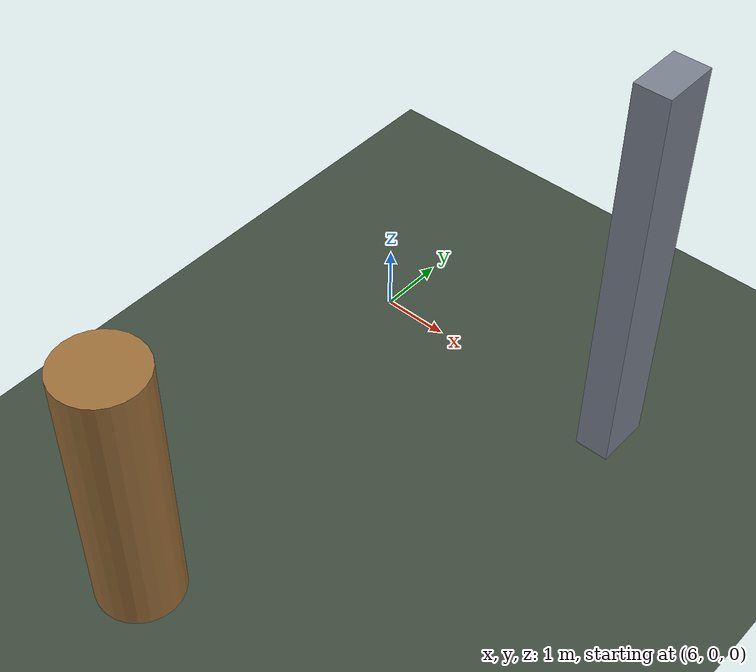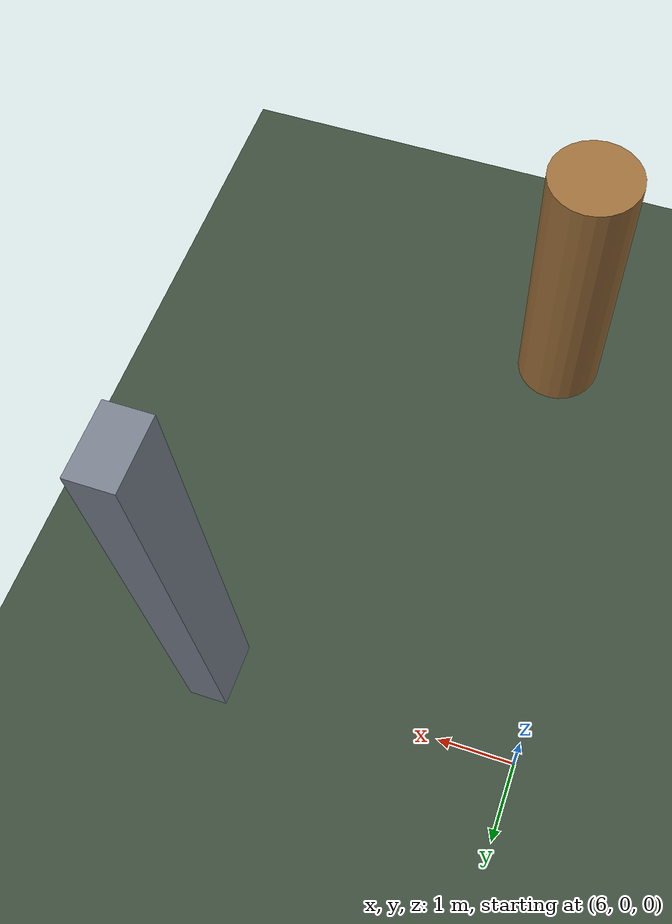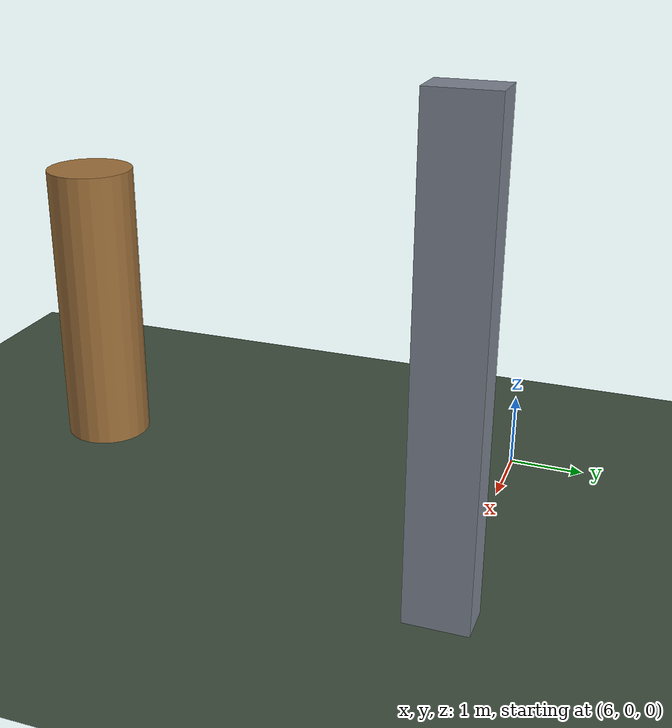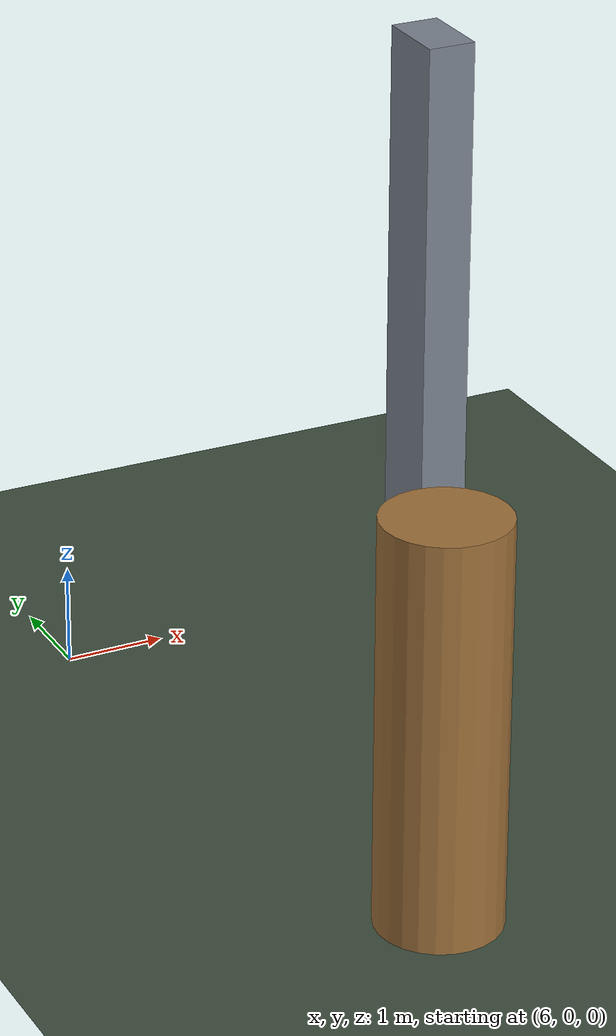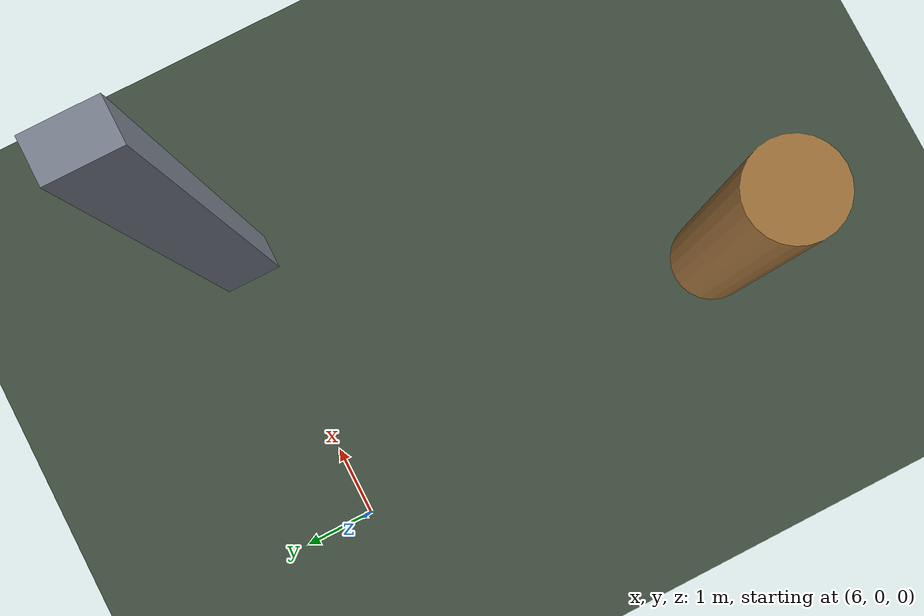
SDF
<?xml version="1.0"?>
<sdf version="1.6">
  <world name="E2_occlusion_arena">
    <gravity>0 0 -9.80665</gravity>
    <physics name="ode_1khz" type="ode">
      <max_step_size>0.001</max_step_size>
      <real_time_factor>1.0</real_time_factor>
      <real_time_update_rate>1000</real_time_update_rate>
    </physics>

    <scene>
      <ambient>0.35 0.35 0.35 1</ambient>
      <background>0.65 0.78 0.92 1</background>
      <shadows>false</shadows>
    </scene>

    <light name="sun" type="directional">
      <cast_shadows>false</cast_shadows>
      <pose>0 0 10 0 0 0</pose>
      <diffuse>0.9 0.9 0.9 1</diffuse>
      <specular>0.1 0.1 0.1 1</specular>
      <direction>-0.4 0.2 -0.9</direction>
    </light>

    <include>
      <uri>model://mid360_open_ground</uri>
      <name>open_ground</name>
    </include>

    <include>
      <uri>model://background_wall</uri>
      <name>background_wall</name>
      <pose>10 0 0 0 0 0</pose>
    </include>

    <include>
      <uri>model://pillar</uri>
      <name>pillar</name>
      <pose>7 -6 0 0 0 0</pose>
    </include>

    <!-- Dynamic entities are spawned by the S02, S04, and S06 gates. -->
  </world>
</sdf>

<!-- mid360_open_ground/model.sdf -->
<sdf version="1.6">
  <model name="mid360_open_ground">
    <static>true</static>
    <link name="ground_link">
      <collision name="ground_collision">
        <geometry>
          <plane>
            <normal>0 0 1</normal>
            <size>100 100</size>
          </plane>
        </geometry>
        <surface>
          <friction>
            <ode>
              <mu>1.0</mu>
              <mu2>1.0</mu2>
            </ode>
          </friction>
          <contact>
            <collide_without_contact>true</collide_without_contact>
          </contact>
        </surface>
      </collision>
      <visual name="ground_visual">
        <geometry>
          <plane>
            <normal>0 0 1</normal>
            <size>100 100</size>
          </plane>
        </geometry>
        <material>
          <ambient>0.18 0.22 0.18 1</ambient>
          <diffuse>0.24 0.30 0.24 1</diffuse>
          <specular>0.01 0.01 0.01 1</specular>
        </material>
      </visual>
    </link>
  </model>
</sdf>

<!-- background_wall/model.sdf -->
<sdf version="1.6">
  <model name="background_wall">
    <static>true</static>
    <link name="wall_link">
      <collision name="wall_collision">
        <pose>0 0 3.0 0 0 0</pose>
        <geometry>
          <box>
            <size>0.50 0.80 6.00</size>
          </box>
        </geometry>
        <surface>
          <contact>
            <collide_without_contact>true</collide_without_contact>
          </contact>
        </surface>
      </collision>
      <visual name="wall_visual">
        <pose>0 0 3.0 0 0 0</pose>
        <geometry>
          <box>
            <size>0.50 0.80 6.00</size>
          </box>
        </geometry>
        <material>
          <ambient>0.34 0.36 0.40 1</ambient>
          <diffuse>0.48 0.51 0.56 1</diffuse>
          <specular>0.03 0.03 0.03 1</specular>
        </material>
      </visual>
    </link>
  </model>
</sdf>

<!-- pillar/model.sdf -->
<sdf version="1.6">
  <model name="pillar">
    <static>true</static>
    <link name="pillar_link">
      <collision name="pillar_collision">
        <pose>0 0 2.0 0 0 0</pose>
        <geometry>
          <cylinder>
            <radius>0.60</radius>
            <length>4.0</length>
          </cylinder>
        </geometry>
        <surface>
          <contact>
            <collide_without_contact>true</collide_without_contact>
          </contact>
        </surface>
      </collision>
      <visual name="pillar_visual">
        <pose>0 0 2.0 0 0 0</pose>
        <geometry>
          <cylinder>
            <radius>0.60</radius>
            <length>4.0</length>
          </cylinder>
        </geometry>
        <material>
          <ambient>0.42 0.30 0.16 1</ambient>
          <diffuse>0.62 0.44 0.23 1</diffuse>
          <specular>0.02 0.02 0.02 1</specular>
        </material>
      </visual>
    </link>
  </model>
</sdf>
